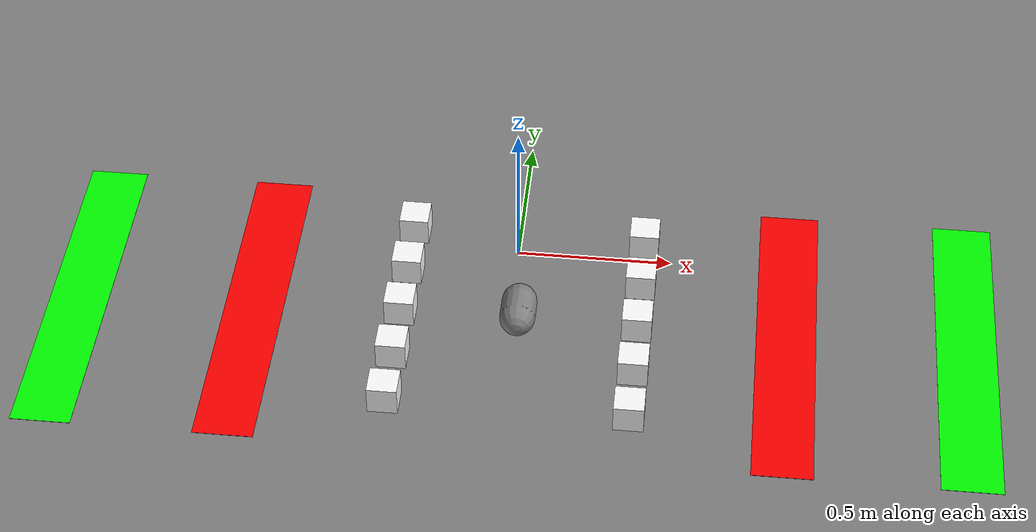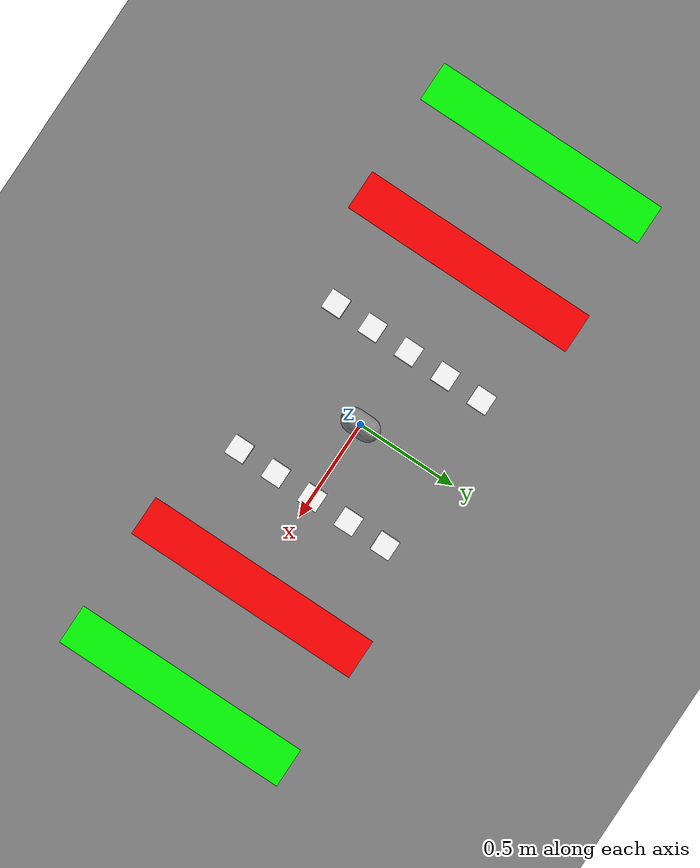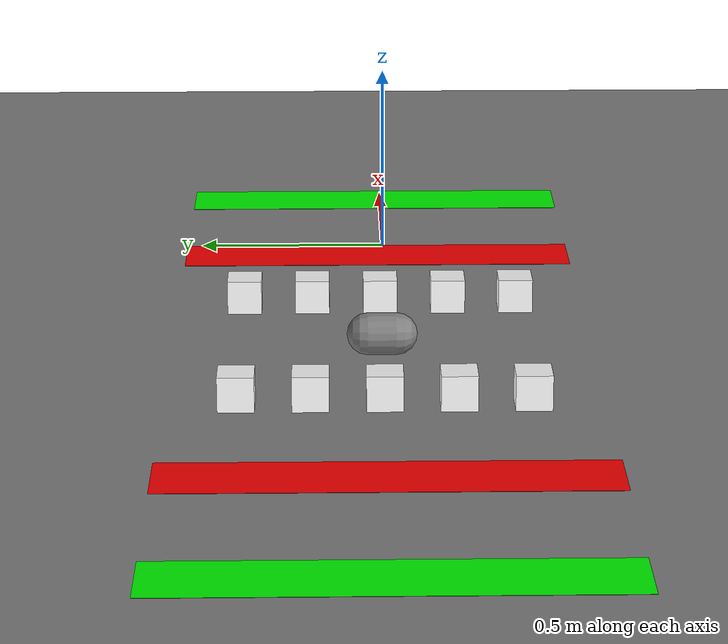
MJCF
<mujoco model="arm3d">
    <compiler angle="radian" coordinate="local" inertiafromgeom="true" meshdir="mesh" texturedir="textures" />
    <option gravity="0 0 0" integrator="Euler" iterations="20" timestep="0.01" />

    <default>
        <joint armature="0.04" damping="1" limited="true" />
        <geom conaffinity="0" condim="1" contype="0" density="10" friction=".8 .1 .1" margin="0.002" />
    </default>

    <worldbody>
        <light diffuse=".5 .5 .5" dir="0 0 -1" pos="0 0 3" />

        <geom conaffinity="1" contype="1" name="table" pos="0 0.5 -0.325" size="10 10 0.1" type="plane" />

        <body name="wrist base" pos="0. 0. -0.2630">
            <joint axis="0 1 0" damping="0.1" name="wrist_slidey" pos="0 0 0" range="-10.3213 10.3" type="slide" />
            <joint axis="1 0 0" damping="0.1" name="wrist_slidex" pos="0 0 0" range="-10.3213 10.3" type="slide" />
            <geom conaffinity="1" contype="1" fromto="0 0.04 0. 0 -0.04 0" size="0.06" type="capsule" />
        </body>

        <body name="obj1" pos="0.4 -0.4 -0.325">
            <joint axis="0 1 0" damping="1.5" name="obj1_slidey" pos="0 0 0.05" range="-10.3213 10.3" type="slide" />
            <joint axis="1 0 0" damping="1.5" name="obj1_slidex" pos="0 0 0.05" range="-10.3213 10.3" type="slide" />
            <geom conaffinity="1" contype="1" pos="0 0 0.05" density="0.001" size="0.05 0.05 0.05" rgba="1 1 1 1" type="box" />
        </body>

        <body name="obj2" pos="0.4 -0.2 -0.325">
            <joint axis="0 1 0" damping="1.5" name="obj2_slidey" pos="0 0 0.05" range="-10.3213 10.3" type="slide" />
            <joint axis="1 0 0" damping="1.5" name="obj2_slidex" pos="0 0 0.05" range="-10.3213 10.3" type="slide" />
            <geom conaffinity="1" contype="1" pos="0 0 0.05" density="0.001" size="0.05 0.05 0.05" rgba="1 1 1 1" type="box" />
        </body>

        <body name="obj3" pos="0.4 0. -0.325">
            <joint axis="0 1 0" damping="1.5" name="obj3_slidey" pos="0 0 0.05" range="-10.3213 10.3" type="slide" />
            <joint axis="1 0 0" damping="1.5" name="obj3_slidex" pos="0 0 0.05" range="-10.3213 10.3" type="slide" />
            <geom conaffinity="1" contype="1" pos="0 0 0.05" density="0.001" size="0.05 0.05 0.05" rgba="1 1 1 1" type="box" />
        </body>

        <body name="obj4" pos="0.4 0.2 -0.325">
            <joint axis="0 1 0" damping="1.5" name="obj4_slidey" pos="0 0 0.05" range="-10.3213 10.3" type="slide" />
            <joint axis="1 0 0" damping="1.5" name="obj4_slidex" pos="0 0 0.05" range="-10.3213 10.3" type="slide" />
            <geom conaffinity="1" contype="1" pos="0 0 0.05" density="0.001" size="0.05 0.05 0.05" rgba="1 1 1 1" type="box" />
        </body>

        <body name="obj5" pos="0.4 0.4 -0.325">
            <joint axis="0 1 0" damping="1.5" name="obj5_slidey" pos="0 0 0.05" range="-10.3213 10.3" type="slide" />
            <joint axis="1 0 0" damping="1.5" name="obj5_slidex" pos="0 0 0.05" range="-10.3213 10.3" type="slide" />
            <geom conaffinity="1" contype="1" pos="0 0 0.05" density="0.001" size="0.05 0.05 0.05" rgba="1 1 1 1" type="box" />
        </body>

        <body name="obj6" pos="-0.4 -0.4 -0.325">
            <joint axis="0 1 0" damping="1.5" name="obj6_slidey" pos="0 0 0.05" range="-10.3213 10.3" type="slide" />
            <joint axis="1 0 0" damping="1.5" name="obj6_slidex" pos="0 0 0.05" range="-10.3213 10.3" type="slide" />
            <geom conaffinity="1" contype="1" pos="0 0 0.05" density="0.001" size="0.05 0.05 0.05" rgba="1 1 1 1" type="box" />
        </body>

        <body name="obj7" pos="-0.4 -0.2 -0.325">
            <joint axis="0 1 0" damping="1.5" name="obj7_slidey" pos="0 0 0.05" range="-10.3213 10.3" type="slide" />
            <joint axis="1 0 0" damping="1.5" name="obj7_slidex" pos="0 0 0.05" range="-10.3213 10.3" type="slide" />
            <geom conaffinity="1" contype="1" pos="0 0 0.05" density="0.001" size="0.05 0.05 0.05" rgba="1 1 1 1" type="box" />
        </body>

        <body name="obj8" pos="-0.4 0. -0.325">
            <joint axis="0 1 0" damping="1.5" name="obj8_slidey" pos="0 0 0.05" range="-10.3213 10.3" type="slide" />
            <joint axis="1 0 0" damping="1.5" name="obj8_slidex" pos="0 0 0.05" range="-10.3213 10.3" type="slide" />
            <geom conaffinity="1" contype="1" pos="0 0 0.05" density="0.001" size="0.05 0.05 0.05" rgba="1 1 1 1" type="box" />
        </body>

        <body name="obj9" pos="-0.4 0.2 -0.325">
            <joint axis="0 1 0" damping="1.5" name="obj9_slidey" pos="0 0 0.05" range="-10.3213 10.3" type="slide" />
            <joint axis="1 0 0" damping="1.5" name="obj9_slidex" pos="0 0 0.05" range="-10.3213 10.3" type="slide" />
            <geom conaffinity="1" contype="1" pos="0 0 0.05" density="0.001" size="0.05 0.05 0.05" rgba="1 1 1 1" type="box" />
        </body>

        <body name="obj10" pos="-0.4 0.4 -0.325">
            <joint axis="0 1 0" damping="1.5" name="obj10_slidey" pos="0 0 0.05" range="-10.3213 10.3" type="slide" />
            <joint axis="1 0 0" damping="1.5" name="obj10_slidex" pos="0 0 0.05" range="-10.3213 10.3" type="slide" />
            <geom conaffinity="1" contype="1" pos="0 0 0.05" density="0.001" size="0.05 0.05 0.05" rgba="1 1 1 1" type="box" />
        </body>

        <body name="goal1" pos="0.9 0.0 -0.3230">
            <geom conaffinity="0" contype="0" density="0.00001" rgba="1. 0. 0. 1" size="0.1 0.6 0.0005" type="box" />
        </body>

        <body name="goal2" pos="-0.9 0.0 -0.3230">
            <geom conaffinity="0" contype="0" density="0.00001" rgba="1. 0. 0. 1" size="0.1 0.6 0.0005" type="box" />
        </body>

        <body name="goal3" pos="1.5 0.0 -0.3230">
            <geom conaffinity="0" contype="0" density="0.00001" rgba="0. 1. 0. 1" size="0.1 0.6 0.0005" type="box" />
        </body>

        <body name="goal4" pos="-1.5 0.0 -0.3230">
            <geom conaffinity="0" contype="0" density="0.00001" rgba="0. 1. 0. 1" size="0.1 0.6 0.0005" type="box" />
        </body>
    </worldbody>

    <actuator>
        <motor ctrllimited="true" ctrlrange="-2.0 2.0" joint="wrist_slidex" />
        <motor ctrllimited="true" ctrlrange="-2.0 2.0" joint="wrist_slidey" />
    </actuator>

</mujoco>
